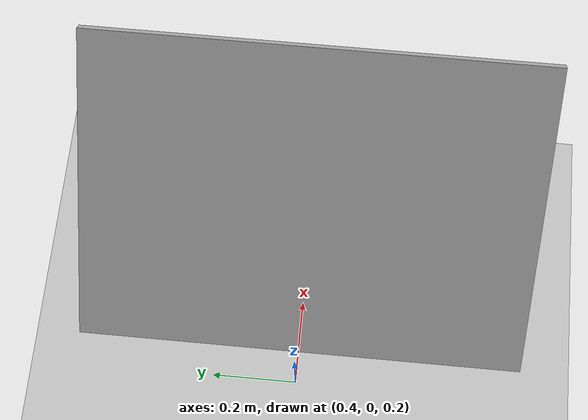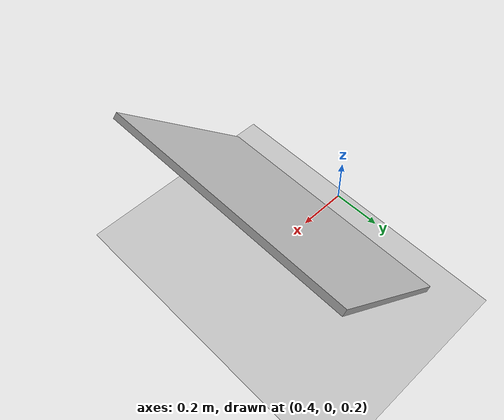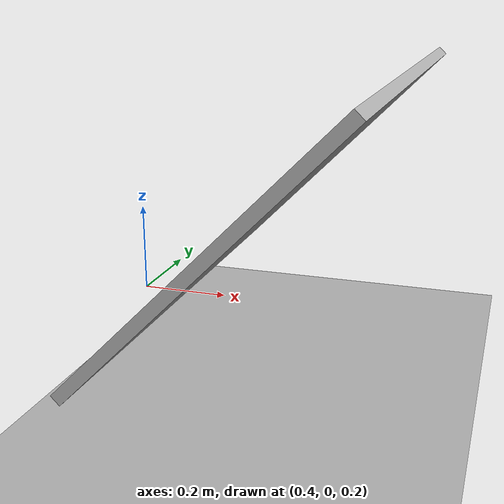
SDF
<?xml version="1.0"?>
<sdf version="1.5">
  <world name="default">
    <light name='sun' type='directional'>
      <cast_shadows>1</cast_shadows>
      <pose>0 0 10 0 -0 0</pose>
      <diffuse>0.8 0.8 0.8 1</diffuse>
      <specular>0.1 0.1 0.1 1</specular>
      <attenuation>
        <range>1000</range>
        <constant>0.9</constant>
        <linear>0.01</linear>
        <quadratic>0.001</quadratic>
      </attenuation>
      <direction>-0.5 0.5 -1</direction>
    </light>
    <model name='ground_plane'>
      <static>1</static>
      <link name='link'>
        <collision name='collision'>
          <geometry>
            <plane>
              <normal>0 0 1</normal>
              <size>100 100</size>
            </plane>
          </geometry>
          <surface>
            <friction>
              <ode>
                <mu>100</mu>
                <mu2>50</mu2>
              </ode>
            </friction>
            <contact>
              <ode/>
            </contact>
            <bounce/>
          </surface>
          <max_contacts>10</max_contacts>
        </collision>
        <visual name='visual'>
          <cast_shadows>0</cast_shadows>
          <geometry>
            <plane>
              <normal>0 0 1</normal>
              <size>100 100</size>
            </plane>
          </geometry>
          <material>
            <script>
              <uri>file://media/materials/scripts/gazebo.material</uri>
              <name>Gazebo/Grey</name>
            </script>
          </material>
        </visual>
        <velocity_decay>
          <linear>0</linear>
          <angular>0</angular>
        </velocity_decay>
        <self_collide>0</self_collide>
        <kinematic>0</kinematic>
        <gravity>1</gravity>
      </link>
    </model>
    <physics type='ode'>
      <max_step_size>0.001</max_step_size>
      <real_time_factor>1</real_time_factor>
      <real_time_update_rate>1000</real_time_update_rate>
      <gravity>0 0 -9.81</gravity>
    </physics>
    <scene>
      <ambient>0.4 0.4 0.4 1</ambient>
      <background>0.7 0.7 0.7 1</background>
      <shadows>1</shadows>
    </scene>

    <model name="WipeBoard">
      <pose>0.753698 0 0.464900 0 -0.785398 0</pose>
      <static>true</static>
      <link name="wbLink">
        <collision name="wbCollision">
          <geometry>
            <box>
              <size>0.762456 1.072930 0.025</size>
            </box>
          </geometry>
        </collision>

        <visual name="wbVisual">
          <geometry>
            <box>
              <size>0.762456 1.072930 0.025</size>
            </box>
          </geometry>
        </visual>
      </link>
      <plugin name="libgazebo-rsb-model-state-plugin" filename="libgazebo-rsb-model-state-plugin.so">
      </plugin>
    </model>

    <!-- filename should point to the prefix TODO -->
    <plugin name="rtt_gazebo_deployer_world_plugin" filename="librtt_gazebo_deployer_world_plugin.so"/>
  </world>
</sdf>
